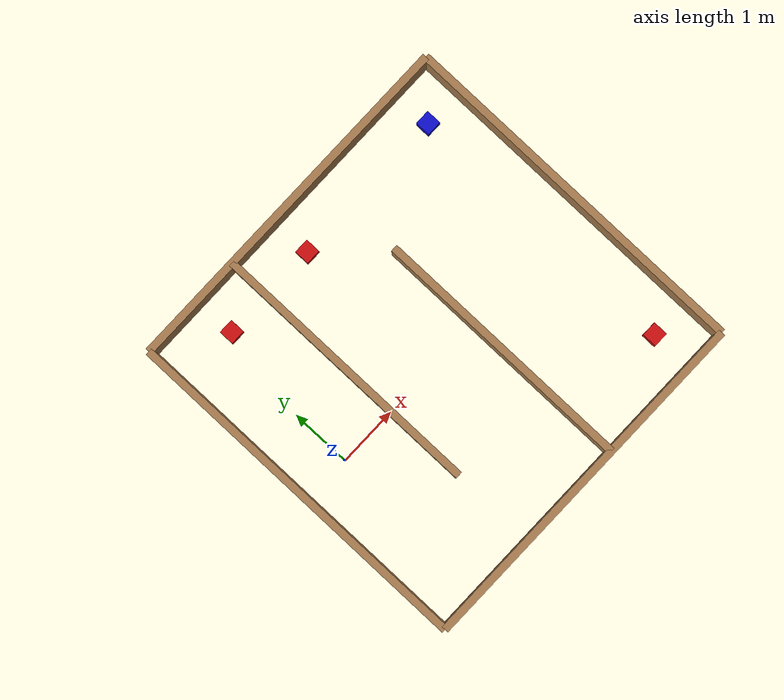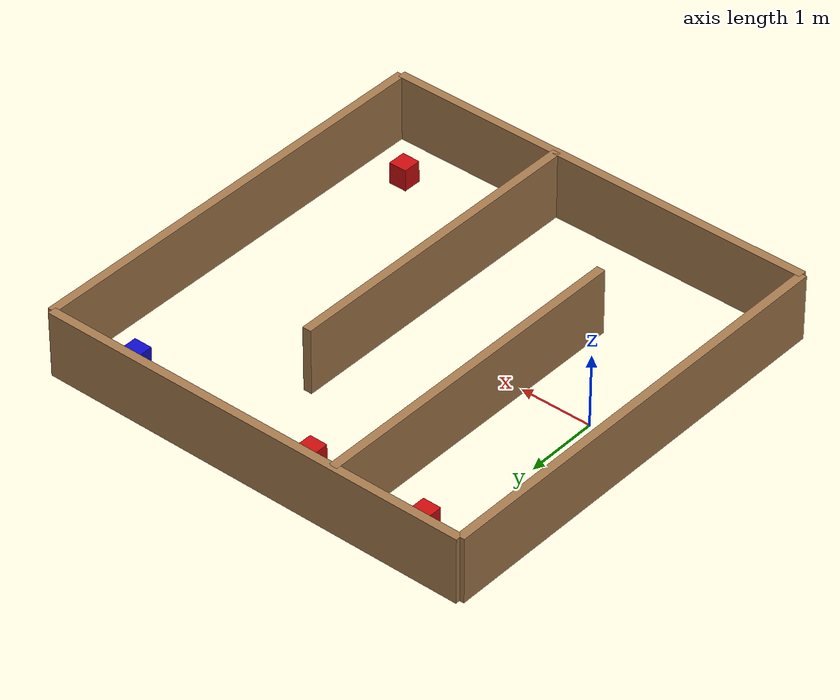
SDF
<sdf version="1.5">
 <world name="tars_zigzag">
  <physics type="ode">
   <max_step_size>0.001</max_step_size>
   <real_time_factor>1</real_time_factor>
   <real_time_update_rate>1000</real_time_update_rate>
   <gravity>0 0 -9.8</gravity>
  </physics>
  <plugin filename="gz-sim-physics-system" name="gz::sim::systems::Physics"/>
  <plugin filename="gz-sim-user-commands-system" name="gz::sim::systems::UserCommands"/>
  <plugin filename="gz-sim-scene-broadcaster-system" name="gz::sim::systems::SceneBroadcaster"/>
  <plugin filename="gz-sim-contact-system" name="gz::sim::systems::Contact"/>
  <plugin filename="gz-sim-sensors-system" name="gz::sim::systems::Sensors">
   <render_engine>ogre2</render_engine>
  </plugin>
  <plugin filename="gz-sim-imu-system" name="gz::sim::systems::Imu"/>
  <scene>
   <shadows>false</shadows>
   <ambient>0.2 0.2 0.2 1</ambient>
   <background>1 1 1 1</background>
   <grid>false</grid>
   <origin_visual>false</origin_visual>
  </scene>
  <include><uri>model://sun</uri></include>
  <light name="camera_spot_1_light" type="spot">
   <pose>-6 4 4 0 -1 -0.8</pose>
   <diffuse>0.5 0.5 0.5 1</diffuse>
   <specular>0.1 0.1 0.1 1</specular>
   <direction>0 0 -1</direction>
   <attenuation>
    <range>20</range>
    <constant>0.2</constant>
    <linear>0.01</linear>
    <quadratic>0.001</quadratic>
   </attenuation>
   <cast_shadows>0</cast_shadows>
   <spot><inner_angle>0.6</inner_angle><outer_angle>1</outer_angle><falloff>1</falloff></spot>
  </light>
  <light name="camera_spot_2_light" type="spot">
   <pose>5 -3 4 0 0.8 -0.6</pose>
   <diffuse>0.5 0.5 0.5 1</diffuse>
   <specular>0.1 0.1 0.1 1</specular>
   <direction>0 0 -1</direction>
   <attenuation>
    <range>20</range>
    <constant>0.3</constant>
    <linear>0.01</linear>
    <quadratic>0.001</quadratic>
   </attenuation>
   <cast_shadows>0</cast_shadows>
   <spot><inner_angle>0.6</inner_angle><outer_angle>1</outer_angle><falloff>1</falloff></spot>
  </light>
  <model name="paredes_tars">
   <static>true</static>
   <link name="borde_sur">
    <pose>2.2 -2.8 0.45 0 0 0</pose>
    <collision name="collision"><geometry><box><size>6.0 0.12 0.9</size></box></geometry></collision>
    <visual name="visual">
     <geometry><box><size>6.0 0.12 0.9</size></box></geometry>
     <material><ambient>0.65 0.48 0.30 1</ambient><diffuse>0.65 0.48 0.30 1</diffuse></material>
    </visual>
   </link>
   <link name="borde_norte">
    <pose>2.2 3.2 0.45 0 0 0</pose>
    <collision name="collision"><geometry><box><size>6.0 0.12 0.9</size></box></geometry></collision>
    <visual name="visual">
     <geometry><box><size>6.0 0.12 0.9</size></box></geometry>
     <material><ambient>0.65 0.48 0.30 1</ambient><diffuse>0.65 0.48 0.30 1</diffuse></material>
    </visual>
   </link>
   <link name="borde_oeste">
    <pose>-0.8 0.20000000000000018 0.45 0 0 0</pose>
    <collision name="collision"><geometry><box><size>0.12 6.0 0.9</size></box></geometry></collision>
    <visual name="visual">
     <geometry><box><size>0.12 6.0 0.9</size></box></geometry>
     <material><ambient>0.65 0.48 0.30 1</ambient><diffuse>0.65 0.48 0.30 1</diffuse></material>
    </visual>
   </link>
   <link name="borde_este">
    <pose>5.2 0.20000000000000018 0.45 0 0 0</pose>
    <collision name="collision"><geometry><box><size>0.12 6.0 0.9</size></box></geometry></collision>
    <visual name="visual">
     <geometry><box><size>0.12 6.0 0.9</size></box></geometry>
     <material><ambient>0.65 0.48 0.30 1</ambient><diffuse>0.65 0.48 0.30 1</diffuse></material>
    </visual>
   </link>
   <link name="paso_inferior">
    <pose>1.0 0.9000000000000001 0.45 0 0 0</pose>
    <collision name="collision"><geometry><box><size>0.12 4.6 0.9</size></box></geometry></collision>
    <visual name="visual">
     <geometry><box><size>0.12 4.6 0.9</size></box></geometry>
     <material><ambient>0.65 0.48 0.30 1</ambient><diffuse>0.65 0.48 0.30 1</diffuse></material>
    </visual>
   </link>
   <link name="paso_superior">
    <pose>2.8 -0.5999999999999999 0.45 0 0 0</pose>
    <collision name="collision"><geometry><box><size>0.12 4.4 0.9</size></box></geometry></collision>
    <visual name="visual">
     <geometry><box><size>0.12 4.4 0.9</size></box></geometry>
     <material><ambient>0.65 0.48 0.30 1</ambient><diffuse>0.65 0.48 0.30 1</diffuse></material>
    </visual>
   </link>
  </model>
  <model name="marcas_color">
   <static>true</static>
   <link name="cuadrado_rojo_1">
    <pose>0.25 2.55 .15 0 0 0</pose>
    <collision name="collision"><geometry><box><size>0.25 0.25 0.3</size></box></geometry></collision>
    <visual name="visual">
     <geometry><box><size>0.25 0.25 0.3</size></box></geometry>
     <material>
      <ambient>0.8 0.05 0.05 1</ambient>
      <diffuse>0.8 0.05 0.05 1</diffuse>
      <specular>0.1 0.1 0.1 1</specular>
     </material>
    </visual>
   </link>
   <link name="cuadrado_rojo_2">
    <pose>1.9 2.55 .15 0 0 0</pose>
    <collision name="collision"><geometry><box><size>0.25 0.25 0.3</size></box></geometry></collision>
    <visual name="visual">
     <geometry><box><size>0.25 0.25 0.3</size></box></geometry>
     <material>
      <ambient>0.8 0.05 0.05 1</ambient>
      <diffuse>0.8 0.05 0.05 1</diffuse>
      <specular>0.1 0.1 0.1 1</specular>
     </material>
    </visual>
   </link>
   <link name="cuadrado_rojo_3">
    <pose>4.55 -2.1 .15 0 0 0</pose>
    <collision name="collision"><geometry><box><size>0.25 0.25 0.3</size></box></geometry></collision>
    <visual name="visual">
     <geometry><box><size>0.25 0.25 0.3</size></box></geometry>
     <material>
      <ambient>0.8 0.05 0.05 1</ambient>
      <diffuse>0.8 0.05 0.05 1</diffuse>
      <specular>0.1 0.1 0.1 1</specular>
     </material>
    </visual>
   </link>
   <link name="cuadrado_azul_1">
    <pose>4.55 2.55 .15 0 0 0</pose>
    <collision name="collision"><geometry><box><size>0.25 0.25 0.3</size></box></geometry></collision>
    <visual name="visual">
     <geometry><box><size>0.25 0.25 0.3</size></box></geometry>
     <material>
      <ambient>0.05 0.05 0.8 1</ambient>
      <diffuse>0.05 0.05 0.8 1</diffuse>
      <specular>0.1 0.1 0.1 1</specular>
     </material>
    </visual>
   </link>
  </model>
 </world>
</sdf>
